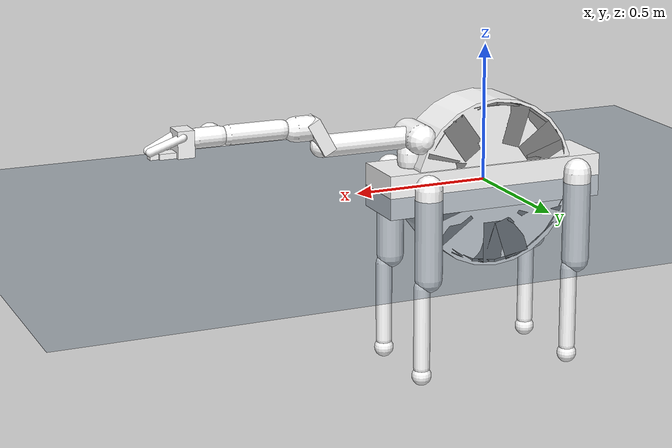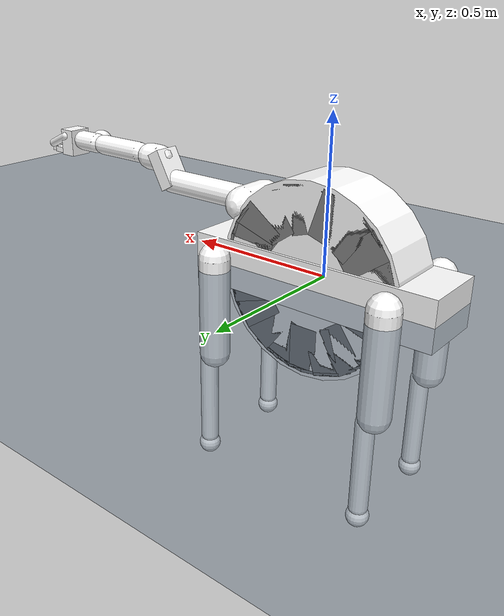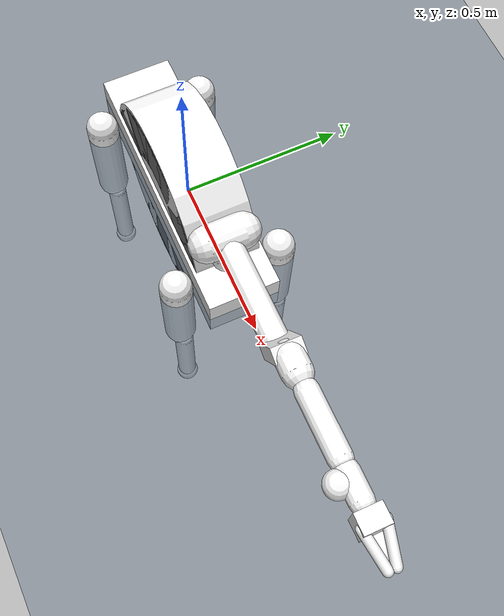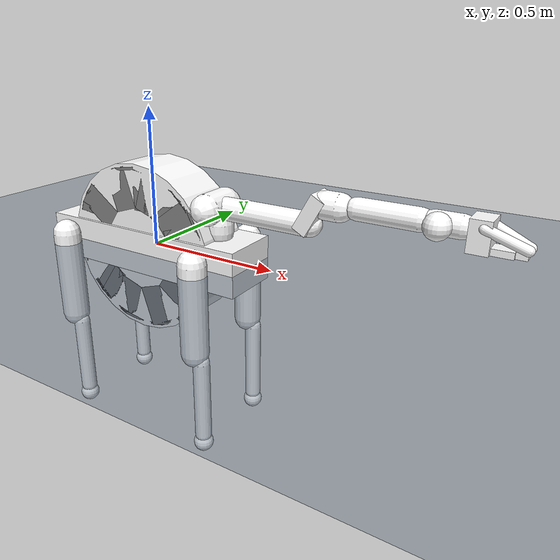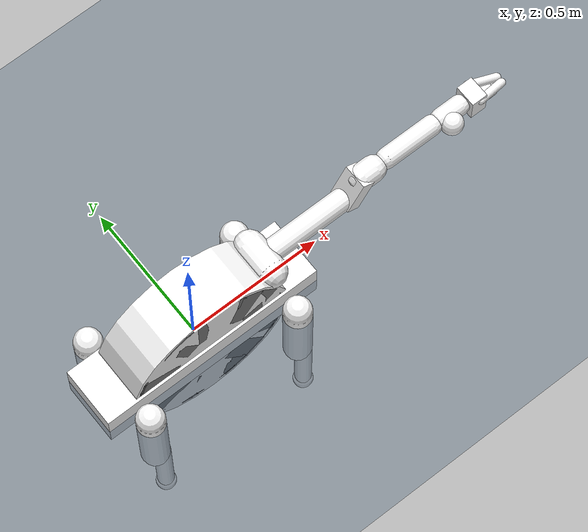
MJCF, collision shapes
<mujoco model="spot_tire_scene">
<!-- Copyright (c) 2023 Boston Dynamics AI Institute LLC. All rights reserved. -->
  <include file="../../components/spot/compiler.xml" />
  <include file="../../components/spot/defs.xml" />
  <include file="../../components/common/ground_defs.xml" />

  <!-- NOTE: include order impacts actuators and sensors order! -->
  <include file="../../components/spot/base_defs.xml" />
  <include file="../../components/spot/legs_defs.xml" />
  <include file="../../components/spot/arm_defs.xml" />

  <worldbody>
    <include file="../../components/common/ground.xml" />

    <body name="body">
      <include file="../../components/spot/base.xml" />
      <include file="../../components/spot/legs.xml" />
      <include file="../../components/spot/arm.xml" />
    </body>

    <include file="../../components/objects/cartire.xml" />

  </worldbody>

  <include file="../../components/spot/sensors.xml" />
  <include file="../../components/spot/contact.xml" />
</mujoco>

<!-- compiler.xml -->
<mujoco>
  <compiler angle="radian" assetdir="../../../meshes/spot/" autolimits="true"/>

  <option timestep="0.01" solver="Newton" integrator="implicitfast" density="1">
    <!-- iterations="5" ls_iterations="10" -->
  </option>

</mujoco>

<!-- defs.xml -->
<mujoco>
  <asset>
    <material name="black" rgba="0.2 0.2 0.2 1"/>
    <material name="yellow" rgba="1 0.8 0.03 1"/>
    <texture name="bdai_texture" type="2d" file="bdaii_spot_wrap.png"/>
    <material name="bdai" texture="bdai_texture" specular="1" shininess="11"/>
  </asset>

  <default>
    <default class="visual">
      <geom type="mesh" contype="0" conaffinity="0" group="2"/>
    </default>
    <default class="collision">
      <geom group="3" friction="0.15" priority="4" rgba="1 1 1 1">
      </geom>
    </default>
  </default>
</mujoco>

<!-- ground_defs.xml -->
<mujoco>
  <asset>
    <texture name="blue_grid" type="2d" builtin="checker" rgb1="0.2 0.3 0.4" rgb2="0.1 0.2 0.3" width="300" height="300" mark="edge" markrgb="0.8 0.8 0.8"/>
    <material name="blue_grid" texture="blue_grid" texrepeat="5 5" texuniform="true" reflectance=".2"/>
  </asset>
</mujoco>

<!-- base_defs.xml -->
<mujoco>
  <asset>
    <mesh name="body" file="base/collision/body_collision.obj"/>
    <mesh name="body_0_visual" file="base/visual/body_0.obj"/>
    <mesh name="body_1_visual" file="base/visual/body_1.obj"/>
  </asset>

  <default>
    <default class="base">
      <joint damping="30" range="-3 3"/>
      <position kp="300" ctrlrange="-3 3" forcerange="-1000 1000"/>
    </default>
  </default>
</mujoco>

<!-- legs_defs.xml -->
<mujoco>
  <asset>
    <mesh name="left_upper_leg_collision" file="base/collision/left_upper_leg_collision.obj"/>
    <mesh name="left_lower_leg_collision" file="base/collision/left_lower_leg_collision.obj"/>
    <mesh name="right_upper_leg_collision" file="base/collision/right_upper_leg_collision.obj"/>
    <mesh name="right_lower_leg_collision" file="base/collision/right_lower_leg_collision.obj"/>

    <mesh name="front_left_hip_visual" file="base/visual/front_left_hip.obj"/>
    <mesh name="front_left_lower_leg_visual" file="base/visual/front_left_lower_leg.obj"/>
    <mesh name="front_left_upper_leg_0_visual" file="base/visual/front_left_upper_leg_0.obj"/>
    <mesh name="front_left_upper_leg_1_visual" file="base/visual/front_left_upper_leg_1.obj"/>

    <mesh name="front_right_hip_visual" file="base/visual/front_right_hip.obj"/>
    <mesh name="front_right_lower_leg_visual" file="base/visual/front_right_lower_leg.obj"/>
    <mesh name="front_right_upper_leg_0_visual" file="base/visual/front_right_upper_leg_0.obj"/>
    <mesh name="front_right_upper_leg_1_visual" file="base/visual/front_right_upper_leg_1.obj"/>

    <mesh name="rear_left_hip_visual" file="base/visual/rear_left_hip.obj"/>
    <mesh name="rear_left_lower_leg_visual" file="base/visual/rear_left_lower_leg.obj"/>
    <mesh name="rear_left_upper_leg_0_visual" file="base/visual/rear_left_upper_leg_0.obj"/>
    <mesh name="rear_left_upper_leg_1_visual" file="base/visual/rear_left_upper_leg_1.obj"/>

    <mesh name="rear_right_hip_visual" file="base/visual/rear_right_hip.obj"/>
    <mesh name="rear_right_lower_leg_visual" file="base/visual/rear_right_lower_leg.obj"/>
    <mesh name="rear_right_upper_leg_0_visual" file="base/visual/rear_right_upper_leg_0.obj"/>
    <mesh name="rear_right_upper_leg_1_visual" file="base/visual/rear_right_upper_leg_1.obj"/>
  </asset>

  <default>
    <!-- TODO find correct value for actuators -->
    <default class="leg">
      <default class="hip_x">
        <joint range="-0.785398 0.785398"/>
      </default>
      <default class="hip_y">
        <joint range="-0.898845 2.29511"/>
      </default>
      <default class="knee">
        <joint range="-2.7929 -0.254801"/>
      </default>
    </default>
  </default>

  <actuator>
    <position name="act_fl1" joint="joint_front_left_hip_x" kp="60" kv="1.5" ctrlrange="-0.785398 0.785398" forcerange="-45 45"/>
    <position name="act_fl2" joint="joint_front_left_hip_y" kp="60" kv="1.5" ctrlrange="-0.898845 2.29511" forcerange="-45 45"/>
    <position name="act_fl3" joint="joint_front_left_knee" kp="60" kv="1.5" ctrlrange="-2.7929 -0.254801" forcerange="-115 115"/>
    <position name="act_fr1" joint="joint_front_right_hip_x" kp="60" kv="1.5" ctrlrange="-0.785398 0.785398" forcerange="-45 45"/>
    <position name="act_fr2" joint="joint_front_right_hip_y" kp="60" kv="1.5" ctrlrange="-0.898845 2.29511" forcerange="-45 45"/>
    <position name="act_fr3" joint="joint_front_right_knee" kp="60" kv="1.5" ctrlrange="-2.7929 -0.254801" forcerange="-115 115"/>
    <position name="act_rl1" joint="joint_rear_left_hip_x" kp="60" kv="1.5" ctrlrange="-0.785398 0.785398" forcerange="-45 45"/>
    <position name="act_rl2" joint="joint_rear_left_hip_y" kp="60" kv="1.5" ctrlrange="-0.898845 2.29511" forcerange="-45 45"/>
    <position name="act_rl3" joint="joint_rear_left_knee" kp="60" kv="1.5" ctrlrange="-2.7929 -0.254801" forcerange="-115 115"/>
    <position name="act_rr1" joint="joint_rear_right_hip_x" kp="60" kv="1.5" ctrlrange="-0.785398 0.785398" forcerange="-45 45"/>
    <position name="act_rr2" joint="joint_rear_right_hip_y" kp="60" kv="1.5" ctrlrange="-0.898845 2.29511" forcerange="-45 45"/>
    <position name="act_rr3" joint="joint_rear_right_knee" kp="60" kv="1.5" ctrlrange="-2.7929 -0.254801" forcerange="-115 115"/>
  </actuator>
</mujoco>

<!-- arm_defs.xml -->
<mujoco>
  <asset>
    <mesh name="arm_link_sh0_base" file="arm/collision/arm_link_sh0_base.obj"/>
    <mesh name="arm_link_sh0_left_motor" file="arm/collision/arm_link_sh0_left_motor.obj"/>
    <mesh name="arm_link_sh0_right_motor" file="arm/collision/arm_link_sh0_right_motor.obj"/>
    <mesh name="arm_link_sh1" file="arm/collision/arm_link_sh1.obj"/>
    <mesh name="arm_link_el0" file="arm/collision/arm_link_el0.obj"/>
    <mesh name="arm_link_el1" file="arm/collision/arm_link_el1_main.obj"/>
    <mesh name="arm_link_el1_main" file="arm/collision/arm_link_el1_main.obj"/>
    <mesh name="arm_link_el1_lip" file="arm/collision/arm_link_el1_lip.obj"/>
    <mesh name="arm_link_wr0" file="arm/collision/arm_link_wr0.obj"/>
    <mesh name="arm_link_wr1" file="arm/collision/arm_link_wr1.obj"/>

    <mesh name="left_hinge" file="gripper/collision/left_hinge.obj"/>
    <mesh name="left_finger" file="gripper/collision/left_finger.obj"/>
    <mesh name="left_tooth" file="gripper/collision/left_tooth.obj"/>
    <mesh name="right_hinge" file="gripper/collision/right_hinge.obj"/>
    <mesh name="right_finger" file="gripper/collision/right_finger.obj"/>
    <mesh name="right_tooth" file="gripper/collision/right_tooth.obj"/>
    <mesh name="front_jaw" file="gripper/collision/front_jaw.obj"/>
    <mesh name="middle_jaw" file="gripper/collision/middle_jaw.obj"/>
    <mesh name="jaw_tooth" file="gripper/collision/jaw_tooth.obj"/>

    <mesh name="arm_link_sh0_visual" file="arm/visual/arm_link_sh0.obj"/>
    <mesh name="arm_link_sh1_0_visual" file="arm/visual/arm_link_sh1_0.obj"/>
    <mesh name="arm_link_sh1_1_visual" file="arm/visual/arm_link_sh1_1.obj"/>
    <mesh name="arm_link_el0_visual" file="arm/visual/arm_link_el0.obj"/>
    <mesh name="arm_link_el1_0_visual" file="arm/visual/arm_link_el1_0.obj"/>
    <mesh name="arm_link_el1_1_visual" file="arm/visual/arm_link_el1_1.obj"/>
    <mesh name="arm_link_wr0_0_visual" file="arm/visual/arm_link_wr0_0.obj"/>
    <mesh name="arm_link_wr0_1_visual" file="arm/visual/arm_link_wr0_1.obj"/>
    <mesh name="arm_link_wr1_0_visual" file="arm/visual/arm_link_wr1_0.obj"/>
    <mesh name="arm_link_wr1_1_visual" file="arm/visual/arm_link_wr1_1.obj"/>
    <mesh name="arm_link_fngr_0_visual" file="gripper/visual/arm_link_fngr_0.obj"/>
    <mesh name="arm_link_fngr_1_visual" file="gripper/visual/arm_link_fngr_1.obj"/>
  </asset>

  <default>
    <!-- The arm damping is higher than the damping gains in spot-sim, because actual joint damping is unknown -->
    <default class="arm">
      <default class="arm_sh0">
        <joint damping="51.0" range="-2.61799387799149441136 3.14159265358979311599"/>
      </default>
      <default class="arm_sh1">
        <joint damping="76.5" range="-3.14159265358979311599 0.52359877559829881565"/>
      </default>
      <default class="arm_el0">
        <joint damping="51.0" range="0 3.14159265358979311599"/>
      </default>
      <default class="arm_el1">
        <joint damping="10.2" range="-2.79252680319092716487 2.79252680319092716487"/>
      </default>
      <default class="arm_wr0">
        <joint damping="10.2" range="-1.83259571459404613236 1.83259571459404613236"/>
      </default>
      <default class="arm_wr1">
        <joint damping="10.2" range="-2.87979326579064354163 2.87979326579064354163"/>
      </default>
      <default class="arm_f1x">
        <joint damping="1.6" range="-1.57 0"/>
      </default>
    </default>
  </default>

  <actuator>
    <position name="act_3" joint="arm_sh0" kp="1020.0" ctrlrange="-2.61799387799149441136 3.14159265358979311599" forcerange="-90.9 90.0"/>
    <position name="act_4" joint="arm_sh1" kp="255" ctrlrange="-3.14159265358979311599 0.52359877559829881565" forcerange="-181.8 181.8"/>
    <position name="act_5" joint="arm_el0" kp="204.0" ctrlrange="0 3.14159265358979311599" forcerange="-90.9 90.0"/>
    <position name="act_6" joint="arm_el1" kp="102.0" ctrlrange="-2.79252680319092716487 2.79252680319092716487" forcerange="-30.3 30.3"/>
    <position name="act_7" joint="arm_wr0" kp="102.0" ctrlrange="-1.83259571459404613236 1.83259571459404613236" forcerange="-30.9 30.0"/>
    <position name="act_8" joint="arm_wr1" kp="102.0" ctrlrange="-2.87979326579064354163 2.87979326579064354163" forcerange="-30.9 30.0"/>
    <position name="act_9" joint="arm_f1x" kp="16.0" ctrlrange="-1.57 0" forcerange="-15.32 15.32"/>
  </actuator>

</mujoco>

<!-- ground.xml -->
<mujoco>
  <body name="ground">
    <geom name="ground" type="plane" size="2 2 0.01" friction="0.8" priority="5" material="blue_grid"/>
  </body>
</mujoco>

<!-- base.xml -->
<mujoco model="spot_base">
<!-- Copyright (c) 2024 Boston Dynamics AI Institute LLC. All rights reserved. -->
  <joint name="base" type="free"/>
  <inertial mass="16.70765207" pos="0 0 -0.00496172" fullinertia="0.081543792 0.549231154 0.569454373 0 0 0"/>
  <geom name="body_0_visual" class="visual" mesh="body_0_visual" material="black"/>
  <geom name="body_1_visual" class="visual" mesh="body_1_visual" material="yellow"/>
  <geom name="body" class="collision" type="box" size="0.42 0.11 0.08"/>
  <site name="site_body" pos="0 0 0.3" size="0.01"/>
</mujoco>

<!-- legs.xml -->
<mujoco model="spot_legs">
<!-- Copyright (c) 2023 Boston Dynamics AI Institute LLC. All rights reserved. -->
    <body name="legs">
        <body name="front_left_hip" pos="0.29785 0.055 0">
            <inertial pos="-0.01586739 0.00855842 0.00000903" mass="1.13688339" fullinertia="0.00122166 0.00158957 0.00172903 -0.00017754 0.00000043 -0.00000049"/>
            <joint name="joint_front_left_hip_x" class="hip_x" pos="0 0 0" axis="1 0 0" range="-0.785398 0.785398"/>
            <geom name="front_left_hip_visual" class="visual" mesh="front_left_hip_visual" material="black"/>
            <body name="front_left_upper_leg" pos="0 0.110945 0">
                <inertial pos="0.00214442 -0.01110184 -0.07881204" mass="2.25620359" fullinertia="0.02692501 0.02583907 0.00318737 -0.00008782 0.00054873 0.00207146"/>
                <joint name="joint_front_left_hip_y" class="hip_y" pos="0 0 0" axis="0 1 0" range="-0.898845 2.295108"/>
                <geom name="front_left_upper_leg_0_visual" class="visual" mesh="front_left_upper_leg_0_visual" material="yellow"/>
                <geom name="front_left_upper_leg_1_visual" class="visual" mesh="front_left_upper_leg_1_visual" material="black"/>
                <geom name="front_left_upper_leg_main" class="collision" type="capsule" size="0.05 0.165" pos="0 0 -0.13"/>
                <body name="front_left_lower_leg" pos="0.025 0 -0.3205">
                    <inertial pos="0.00597360 0.0 -0.17466427" mass="0.33" fullinertia="0.00701356 0.00709946 0.00014529 0 0.00006600 0"/>
                    <joint name="joint_front_left_knee" class="knee" pos="0 0 0" axis="0 1 0" range="-2.7929 -0.2471"/>
                    <geom name="front_left_lower_leg_visual" class="visual" mesh="front_left_lower_leg_visual" material="black"/>
                    <geom name="front_left_lower_leg_main" class="collision" type="capsule" size="0.03 0.15" pos="0 0 -0.155"/>
                    <geom name="front_left_foot" class="collision" type="sphere" size="0.036" pos="0 0 -0.3365"/>
                    <site name="site_front_left" pos="0 0 -0.3365" size="0.01"/>
                </body>
            </body>
        </body>

        <body name="front_right_hip" pos="0.29785 -0.055 0">
            <inertial pos="-0.01586739 -0.00855842 0.00000903" mass="1.13688339" fullinertia="0.00122166 0.00158957 0.00172903 0.00017754 0.00000043 0.00000049"/>
            <joint name="joint_front_right_hip_x" class="hip_x" pos="0 0 0" axis="1 0 0" range="-0.785398 0.785398"/>
            <geom name="front_right_hip_visual" class="visual" mesh="front_right_hip_visual" material="black"/>
            <body name="front_right_upper_leg" pos="0 -0.110945 0">
                <inertial pos="0.00214442 0.01110184 -0.07881204" mass="2.25620359" fullinertia="0.02692501 0.02583907 0.00318737 0.00008782 0.00054873 -0.00207146"/>
                <joint name="joint_front_right_hip_y" class="hip_y" pos="0 0 0" axis="0 1 0" range="-0.898845 2.295108"/>
                <geom name="front_right_upper_leg_0_visual" class="visual" mesh="front_right_upper_leg_0_visual" material="yellow"/>
                <geom name="front_right_upper_leg_1_visual" class="visual" mesh="front_right_upper_leg_1_visual" material="black"/>
                <geom name="front_right_upper_leg_main" class="collision" type="capsule" size="0.05 0.165" pos="0 0 -0.13"/>
                <body name="front_right_lower_leg" pos="0.025 0 -0.3205">
                    <inertial pos="0.00597360 0.0 -0.17466427" mass="0.33" fullinertia="0.00701356 0.00709946 0.00014529 0 0.00006600 0"/>
                    <joint name="joint_front_right_knee" class="knee" pos="0 0 0" axis="0 1 0" range="-2.7929 -0.2471"/>
                    <geom name="front_right_lower_leg_visual" class="visual" mesh="front_right_lower_leg_visual" material="black"/>
                    <geom name="front_right_lower_leg_main" class="collision" type="capsule" size="0.03 0.15" pos="0 0 -0.155"/>
                    <geom name="front_right_foot" class="collision" type="sphere" size="0.036" pos="0 0 -0.3365"/>
                    <site name="site_front_right" pos="0 0 -0.3365" size="0.01"/>
                </body>
            </body>
        </body>

        <body name="rear_left_hip" pos="-0.29785 0.055 0">
            <inertial pos="0.01586739 0.00855842 0.00000903" mass="1.13688339" fullinertia="0.00122166 0.00158957 0.00172903 0.00017754 -0.00000043 -0.00000049"/>
            <joint name="joint_rear_left_hip_x" class="hip_x" pos="0 0 0" axis="1 0 0" range="-0.785398 0.785398"/>
            <geom name="rear_left_hip_visual" class="visual" mesh="rear_left_hip_visual" material="black"/>
            <body name="rear_left_upper_leg" pos="0 0.110945 0">
                <inertial pos="0.00214442 -0.01110184 -0.07881204" mass="2.25620359" fullinertia="0.02692501 0.02583907 0.00318737 -0.00008782 0.00054873 0.00207146"/>
                <joint name="joint_rear_left_hip_y" class="hip_y" pos="0 0 0" axis="0 1 0" range="-0.898845 2.295108"/>
                <geom name="rear_left_upper_leg_0_visual" class="visual" mesh="rear_left_upper_leg_0_visual" material="yellow"/>
                <geom name="rear_left_upper_leg_1_visual" class="visual" mesh="rear_left_upper_leg_1_visual" material="black"/>
                <geom name="rear_left_upper_leg_main" class="collision" type="capsule" size="0.05 0.165" pos="0 0 -0.13"/>
                <body name="rear_left_lower_leg" pos="0.025 0 -0.3205">
                    <inertial pos="0.00597360 0.0 -0.17466427" mass="0.33" fullinertia="0.00701356 0.00709946 0.00014529 0 0.00006600 0"/>
                    <joint name="joint_rear_left_knee" class="knee" pos="0 0 0" axis="0 1 0" range="-2.7929 -0.2471"/>
                    <geom name="rear_left_lower_leg_visual" class="visual" mesh="rear_left_lower_leg_visual" material="black"/>
                    <geom name="rear_left_lower_leg_main" class="collision" type="capsule" size="0.03 0.15" pos="0 0 -0.155"/>
                    <geom name="rear_left_foot" class="collision" type="sphere" size="0.036" pos="0 0 -0.3365"/>
                    <site name="site_rear_left" pos="0 0 -0.3365" size="0.01"/>
                </body>
            </body>
        </body>

        <body name="rear_right_hip" pos="-0.29785 -0.055 0">
            <inertial pos="0.01586739 -0.00855842 0.00000903" mass="1.13688339" fullinertia="0.00122166 0.00158957 0.00172903 -0.00017754 -0.00000043 0.00000049"/>
            <joint name="joint_rear_right_hip_x" class="hip_x" pos="0 0 0" axis="1 0 0" range="-0.785398 0.785398"/>
            <geom name="rear_right_hip_visual" class="visual" mesh="rear_right_hip_visual" material="black"/>
            <body name="rear_right_upper_leg" pos="0 -0.110945 0">
                <inertial pos="0.00214442 0.01110184 -0.07881204" mass="2.25620359" fullinertia="0.02692501 0.02583907 0.00318737 0.00008782 0.00054873 -0.00207146"/>
                <joint name="joint_rear_right_hip_y" class="hip_y" pos="0 0 0" axis="0 1 0" range="-0.898845 2.295108"/>
                <geom name="rear_right_upper_leg_0_visual" class="visual" mesh="rear_right_upper_leg_0_visual" material="yellow"/>
                <geom name="rear_right_upper_leg_1_visual" class="visual" mesh="rear_right_upper_leg_1_visual" material="black"/>
                <geom name="rear_right_upper_leg_main" class="collision" type="capsule" size="0.05 0.165" pos="0 0 -0.13"/>
                <body name="rear_right_lower_leg" pos="0.025 0 -0.3205">
                    <inertial pos="0.00597360 0.0 -0.17466427" mass="0.33" fullinertia="0.00701356 0.00709946 0.00014529 0 0.00006600 0"/>
                    <joint name="joint_rear_right_knee" class="knee" pos="0 0 0" axis="0 1 0" range="-2.7929 -0.2471"/>
                    <geom name="rear_right_lower_leg_visual" class="visual" mesh="rear_right_lower_leg_visual" material="black"/>
                    <geom name="rear_right_lower_leg_main" class="collision" type="capsule" size="0.03 0.15" pos="0 0 -0.155"/>
                    <geom name="rear_right_foot" class="collision" type="sphere" size="0.036" pos="0 0 -0.3365"/>
                    <site name="site_rear_right" pos="0 0 -0.3365" size="0.01"/>
                </body>
            </body>
        </body>
    </body>
</mujoco>

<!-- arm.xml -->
<mujoco model="spot_arm">
<!-- Copyright (c) 2023 Boston Dynamics AI Institute LLC. All rights reserved. -->
<!-- fullinertia="M(1,1), M(2,2), M(3,3), M(1,2), M(1,3), M(2,3)" -->
  <body name="arm">
    <body name="arm_link_sh0" pos="0.292 0 0.188" gravcomp="1">
      <joint name="arm_sh0" class="arm_sh0" type="hinge" axis="0 0 1" pos="0 0 0"/>
      <inertial mass="1.904699" fullinertia="0.008896 0.004922 0.0073030 0.000005 -0.000193 0.000033" pos="-0.008399 0.000272 -0.024603"/>
      <geom name="arm_link_sh0_visual" class="visual" mesh="arm_link_sh0_visual" material="black"/>
      <geom name="arm_link_sh0_base" class="collision" type="capsule" size="0.05 0.015" pos="0 0 -0.07"/>
      <geom name="arm_link_sh0_motor" class="collision" type="capsule" size="0.055 0.055" pos="-0.015 0 0" euler="1.57079632679 0 0"/>
      <site name="site_arm_link_sh0" pos="0 0 0" size="0.01"/>

      <body name="arm_link_sh1" pos="0 0 0" gravcomp="1">
        <joint name="arm_sh1" class="arm_sh1" type="hinge" axis="0 1 0" pos="0 0 0"/>
        <inertial mass="1.85701942" fullinertia="0.00261526 0.02703868 0.02819929 -0.00040406 0.00010019 0.00000547" pos="0.08084909 -0.00167243 0.00045644" />
        <geom name="arm_link_sh1_0_visual" class="visual" mesh="arm_link_sh1_0_visual" material="yellow"/>
        <geom name="arm_link_sh1_1_visual" class="visual" mesh="arm_link_sh1_1_visual" material="black"/>
        <geom name="arm_link_sh1" class="collision" type="capsule" size="0.04 0.175" pos="0.17 0 0" euler="0 1.57079632679 0"/>
        <site name="site_arm_link_sh1" pos="0 0 0" size="0.01"/>

        <body name="arm_link_el0" pos="0.3385 0 0" gravcomp="1">
          <joint name="arm_el0" class="arm_el0" type="hinge" axis="0 1 0" pos="0 0 0"/>
          <inertial mass="0.94831958" fullinertia="0.00175909 0.00269233 0.00202854 0.00006087  0.00092380 0.00005217" pos="0.04476621 -0.00271130 0.04991363" />
          <geom name="arm_link_el0_visual" class="visual" mesh="arm_link_el0_visual" material="black"/>
          <geom name="arm_link_el0_joint" class="collision" type="box" size="0.025 0.045 0.065" pos="0.02 0 0.04" euler= "0 0.5 0"/>
          <geom name="arm_link_el0_body" class="collision" type="capsule" size="0.045 0.025" pos="0.08 0 0.07" euler="0 1.57079632679 0"/>
          <site name="site_arm_link_el0" pos="0 0 0" size="0.01"/>

          <body name="arm_link_el1" pos="0.4033 0 0.075" gravcomp="1">
            <joint name="arm_el1" class="arm_el1" type="hinge" axis="1 0 0" pos="0 0 0"/>
            <inertial mass="1.01754820" fullinertia="0.00117710 0.01649389 0.01689901 -0.00260549 0.00000156 -0.00000287" pos="-0.16867073 -0.01616121 0.00001149" />
            <geom name="arm_link_el1_0_visual" class="visual" mesh="arm_link_el1_0_visual" material="yellow"/>
            <geom name="arm_link_el1_1_visual" class="visual" mesh="arm_link_el1_1_visual" material="black"/>
            <geom name="arm_link_el1" type="capsule" class="collision" size="0.035 0.095" pos="-0.15 0 0" euler="0 1.57079632679 0"/>
            <geom name="arm_link_el1_knob" type="sphere" class="collision" size="0.04" pos="0 -0.035 0"/>
            <site name="site_arm_link_el1" pos="0 0 0" size="0.01"/>

            <body name="arm_link_wr0" pos="0 0 0" gravcomp="1">
              <joint name="arm_wr0" class="arm_wr0" type="hinge" axis="0 1 0" pos="0 0 0"/>
              <inertial mass="0.58263740" fullinertia="0.00046738 0.00044968 0.00053616 0.00006957 0.00000040 0.00000016" pos="0.00952465 -0.01144406 0.00000186" />
              <geom name="arm_link_wr0_0_visual" class="visual" mesh="arm_link_wr0_0_visual" material="yellow"/>
              <geom name="arm_link_wr0_1_visual" class="visual" mesh="arm_link_wr0_1_visual" material="black"/>
              <geom name="arm_link_wr0" class="collision" type="capsule" size="0.035 0.04" pos="0.02 0 0" euler="0 1.57079632679 0"/>
              <site name="site_arm_link_wr0" pos="0 0 0" size="0.01"/>

              <body name="arm_link_wr1" pos="0 0 0" gravcomp="1">
                <joint name="arm_wr1" class="arm_wr1" type="hinge" axis="1 0 0" pos="0 0 0"/>
                <inertial mass="0.93335298" fullinertia="0.00098836 0.00197018 0.00165791 -0.00000126 -0.00036919 -0.00000074" pos="0.09751283 0.00009265 -0.01120523" />
                <geom name="arm_link_wr1_0_visual" class="visual" mesh="arm_link_wr1_0_visual" material="yellow"/>
                <geom name="arm_link_wr1_1_visual" class="visual" mesh="arm_link_wr1_1_visual" material="black"/>
                <geom name="arm_link_wr1" class="collision" type="box" size="0.03 0.04 0.0475" pos="0.11 0 -0.01" />
                <geom name="bottom_jaw" class="collision" type="box" size="0.03 0.025 0.01" pos="0.17 0 -0.0475" />
                <geom name="front_jaw" class="collision" type="box" size="0.016 0.015 0.01" pos="0.215 0 -0.0475" />
                <geom name="front_jaw_tooth" class="collision" type="box" size="0.005 0.01 0.005" pos="0.224 0 -0.039" euler="0 1 0"/>
                <site name="site_arm_link_wr1" pos="0 0 0" size="0.01"/>

                <body name="arm_link_fngr" pos="0.11745 0.0 0.014820" gravcomp="1">
                  <joint name="arm_f1x" class="arm_f1x" type="hinge" axis="0 1 0" pos="0 0 0"/>
                  <inertial mass="0.22383315" fullinertia="0.00025226 0.00048453 0.00059145 -0.00000536 -0.00015067 0.00000184" pos="0.03565178 0.00067200 -0.01227516" />
                  <geom name="arm_link_fngr_0_visual" class="visual" mesh="arm_link_fngr_0_visual" material="yellow"/>
                  <geom name="arm_link_fngr_1_visual" class="visual" mesh="arm_link_fngr_1_visual" material="black"/>
                  <geom name="left_jaw" type="capsule" class="collision" size="0.015 0.06" pos="0.057 0.023 -0.023" euler="-0.45 2.0 0"/>
                  <geom name="right_jaw" type="capsule" class="collision" size="0.015 0.06" pos="0.057 -0.023 -0.023" euler="0.45 2.0 0"/>
                  <site name="site_arm_link_fngr" pos="0 0 0" size="0.01"/>
                </body>
              </body>
            </body>
          </body>
        </body>
      </body>
    </body>
  </body>
</mujoco>

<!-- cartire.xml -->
<mujoco model="cartire">
  <body name="cartire" pos="0 0 0">
    <joint name="cartire_joint" type="free"/>
    <inertial pos="0 0 0" mass="6.0" diaginertia="0.5 0.5 0.5"/>
    <geom name="tire_outer_0_visual" type="box" size="0.005 0.1 0.046930339512069257" pos="0.29 0 0.01" quat="1.0 0.0 -0.0 0.0" class="visual"/>
    <geom name="tire_outer_0" type="box" size="0.005 0.1 0.046930339512069257" pos="0.29 0 0.01" quat="1.0 0.0 -0.0 0.0" class="collision"/>
    <geom name="tire_outer_seam_0_visual" type="box" size="0.005 0.1 0.046930339512069257" pos="0.28642961877258993 0 0.05536599486166695" quat="0.996917333733128 0.0 -0.07845909572784494 0.0" class="visual"/>
    <geom name="tire_outer_seam_0" type="box" size="0.005 0.1 0.046930339512069257" pos="0.28642961877258993 0 0.05536599486166695" quat="0.996917333733128 0.0 -0.07845909572784494 0.0" class="collision"/>
    <geom name="inner_rim_0_visual" type="box" size="0.075 0.005 0.046930339512069257" pos="0.21999999999999997 0.095 0.01" quat="1.0 0.0 -0.0 0.0" class="visual"/>
    <geom name="inner_rim_0" type="box" size="0.075 0.005 0.046930339512069257" pos="0.21999999999999997 0.095 0.01" quat="1.0 0.0 -0.0 0.0" class="collision"/>
    <geom name="outer_rim_0_visual" type="box" size="0.075 0.005 0.046930339512069257" pos="0.21999999999999997 -0.095 0.01" quat="1.0 0.0 -0.0 0.0" class="visual"/>
    <geom name="outer_rim_0" type="box" size="0.075 0.005 0.046930339512069257" pos="0.21999999999999997 -0.095 0.01" quat="1.0 0.0 -0.0 0.0" class="collision"/>
    <geom name="tire_outer_1_visual" type="box" size="0.005 0.1 0.046930339512069257" pos="0.2758063897255945 0 0.09961492836873473" quat="0.9876883405951378 0.0 -0.15643446504023087 0.0" class="visual"/>
    <geom name="tire_outer_1" type="box" size="0.005 0.1 0.046930339512069257" pos="0.2758063897255945 0 0.09961492836873473" quat="0.9876883405951378 0.0 -0.15643446504023087 0.0" class="collision"/>
    <geom name="tire_outer_seam_1_visual" type="box" size="0.005 0.1 0.046930339512069257" pos="0.25839189201462665 0 0.14165724492446854" quat="0.9723699203976766 0.0 -0.2334453638559054 0.0" class="visual"/>
    <geom name="tire_outer_seam_1" type="box" size="0.005 0.1 0.046930339512069257" pos="0.25839189201462665 0 0.14165724492446854" quat="0.9723699203976766 0.0 -0.2334453638559054 0.0" class="collision"/>
    <geom name="inner_rim_1_visual" type="box" size="0.075 0.005 0.046930339512069257" pos="0.20923243358493376 0.095 0.07798373876248842" quat="0.9876883405951378 0.0 -0.15643446504023087 0.0" class="visual"/>
    <geom name="inner_rim_1" type="box" size="0.075 0.005 0.046930339512069257" pos="0.20923243358493376 0.095 0.07798373876248842" quat="0.9876883405951378 0.0 -0.15643446504023087 0.0" class="collision"/>
    <geom name="outer_rim_1_visual" type="box" size="0.075 0.005 0.046930339512069257" pos="0.20923243358493376 -0.095 0.07798373876248842" quat="0.9876883405951378 0.0 -0.15643446504023087 0.0" class="visual"/>
    <geom name="outer_rim_1" type="box" size="0.075 0.005 0.046930339512069257" pos="0.20923243358493376 -0.095 0.07798373876248842" quat="0.9876883405951378 0.0 -0.15643446504023087 0.0" class="collision"/>
    <geom name="tire_outer_2_visual" type="box" size="0.005 0.1 0.046930339512069257" pos="0.23461492836873474 0 0.1804577231648172" quat="0.9510565162951535 0.0 -0.3090169943749474 0.0" class="visual"/>
    <geom name="tire_outer_2" type="box" size="0.005 0.1 0.046930339512069257" pos="0.23461492836873474 0 0.1804577231648172" quat="0.9510565162951535 0.0 -0.3090169943749474 0.0" class="collision"/>
    <geom name="tire_outer_seam_2_visual" type="box" size="0.005 0.1 0.046930339512069257" pos="0.20506096654409878 0 0.21506096654409876" quat="0.9238795325112867 0.0 -0.3826834323650898 0.0" class="visual"/>
    <geom name="tire_outer_seam_2" type="box" size="0.005 0.1 0.046930339512069257" pos="0.20506096654409878 0 0.21506096654409876" quat="0.9238795325112867 0.0 -0.3826834323650898 0.0" class="collision"/>
    <geom name="inner_rim_2_visual" type="box" size="0.075 0.005 0.046930339512069257" pos="0.1779837387624884 0.095 0.13931275550434408" quat="0.9510565162951535 0.0 -0.3090169943749474 0.0" class="visual"/>
    <geom name="inner_rim_2" type="box" size="0.075 0.005 0.046930339512069257" pos="0.1779837387624884 0.095 0.13931275550434408" quat="0.9510565162951535 0.0 -0.3090169943749474 0.0" class="collision"/>
    <geom name="outer_rim_2_visual" type="box" size="0.075 0.005 0.046930339512069257" pos="0.1779837387624884 -0.095 0.13931275550434408" quat="0.9510565162951535 0.0 -0.3090169943749474 0.0" class="visual"/>
    <geom name="outer_rim_2" type="box" size="0.075 0.005 0.046930339512069257" pos="0.1779837387624884 -0.095 0.13931275550434408" quat="0.9510565162951535 0.0 -0.3090169943749474 0.0" class="collision"/>
    <geom name="tire_outer_3_visual" type="box" size="0.005 0.1 0.046930339512069257" pos="0.1704577231648172 0 0.24461492836873475" quat="0.8910065241883679 0.0 -0.45399049973954675 0.0" class="visual"/>
    <geom name="tire_outer_3" type="box" size="0.005 0.1 0.046930339512069257" pos="0.1704577231648172 0 0.24461492836873475" quat="0.8910065241883679 0.0 -0.45399049973954675 0.0" class="collision"/>
    <geom name="tire_outer_seam_3_visual" type="box" size="0.005 0.1 0.046930339512069257" pos="0.13165724492446856 0 0.26839189201462665" quat="0.8526401643540922 0.0 -0.5224985647159488 0.0" class="visual"/>
    <geom name="tire_outer_seam_3" type="box" size="0.005 0.1 0.046930339512069257" pos="0.13165724492446856 0 0.26839189201462665" quat="0.8526401643540922 0.0 -0.5224985647159488 0.0" class="collision"/>
    <geom name="inner_rim_3_visual" type="box" size="0.075 0.005 0.046930339512069257" pos="0.12931275550434407 0.095 0.18798373876248842" quat="0.8910065241883679 0.0 -0.45399049973954675 0.0" class="visual"/>
    <geom name="inner_rim_3" type="box" size="0.075 0.005 0.046930339512069257" pos="0.12931275550434407 0.095 0.18798373876248842" quat="0.8910065241883679 0.0 -0.45399049973954675 0.0" class="collision"/>
    <geom name="outer_rim_3_visual" type="box" size="0.075 0.005 0.046930339512069257" pos="0.12931275550434407 -0.095 0.18798373876248842" quat="0.8910065241883679 0.0 -0.45399049973954675 0.0" class="visual"/>
    <geom name="outer_rim_3" type="box" size="0.075 0.005 0.046930339512069257" pos="0.12931275550434407 -0.095 0.18798373876248842" quat="0.8910065241883679 0.0 -0.45399049973954675 0.0" class="collision"/>
    <geom name="tire_outer_4_visual" type="box" size="0.005 0.1 0.046930339512069257" pos="0.08961492836873476 0 0.2858063897255945" quat="0.8090169943749475 0.0 -0.5877852522924731 0.0" class="visual"/>
    <geom name="tire_outer_4" type="box" size="0.005 0.1 0.046930339512069257" pos="0.08961492836873476 0 0.2858063897255945" quat="0.8090169943749475 0.0 -0.5877852522924731 0.0" class="collision"/>
    <geom name="tire_outer_seam_4_visual" type="box" size="0.005 0.1 0.046930339512069257" pos="0.04536599486166697 0 0.29642961877258994" quat="0.7604059656000309 0.0 -0.6494480483301837 0.0" class="visual"/>
    <geom name="tire_outer_seam_4" type="box" size="0.005 0.1 0.046930339512069257" pos="0.04536599486166697 0 0.29642961877258994" quat="0.7604059656000309 0.0 -0.6494480483301837 0.0" class="collision"/>
    <geom name="inner_rim_4_visual" type="box" size="0.075 0.005 0.046930339512069257" pos="0.06798373876248844 0.095 0.21923243358493377" quat="0.8090169943749475 0.0 -0.5877852522924731 0.0" class="visual"/>
    <geom name="inner_rim_4" type="box" size="0.075 0.005 0.046930339512069257" pos="0.06798373876248844 0.095 0.21923243358493377" quat="0.8090169943749475 0.0 -0.5877852522924731 0.0" class="collision"/>
    <geom name="outer_rim_4_visual" type="box" size="0.075 0.005 0.046930339512069257" pos="0.06798373876248844 -0.095 0.21923243358493377" quat="0.8090169943749475 0.0 -0.5877852522924731 0.0" class="visual"/>
    <geom name="outer_rim_4" type="box" size="0.075 0.005 0.046930339512069257" pos="0.06798373876248844 -0.095 0.21923243358493377" quat="0.8090169943749475 0.0 -0.5877852522924731 0.0" class="collision"/>
    <geom name="tire_outer_5_visual" type="box" size="0.005 0.1 0.046930339512069257" pos="1.775737858763662e-17 0 0.3" quat="0.7071067811865476 0.0 -0.7071067811865475 0.0" class="visual"/>
    <geom name="tire_outer_5" type="box" size="0.005 0.1 0.046930339512069257" pos="1.775737858763662e-17 0 0.3" quat="0.7071067811865476 0.0 -0.7071067811865475 0.0" class="collision"/>
    <geom name="tire_outer_seam_5_visual" type="box" size="0.005 0.1 0.046930339512069257" pos="-0.04536599486166693 0 0.29642961877258994" quat="0.6494480483301837 0.0 -0.7604059656000309 0.0" class="visual"/>
    <geom name="tire_outer_seam_5" type="box" size="0.005 0.1 0.046930339512069257" pos="-0.04536599486166693 0 0.29642961877258994" quat="0.6494480483301837 0.0 -0.7604059656000309 0.0" class="collision"/>
    <geom name="inner_rim_5_visual" type="box" size="0.075 0.005 0.046930339512069257" pos="1.3471114790620883e-17 0.095 0.22999999999999998" quat="0.7071067811865476 0.0 -0.7071067811865475 0.0" class="visual"/>
    <geom name="inner_rim_5" type="box" size="0.075 0.005 0.046930339512069257" pos="1.3471114790620883e-17 0.095 0.22999999999999998" quat="0.7071067811865476 0.0 -0.7071067811865475 0.0" class="collision"/>
    <geom name="outer_rim_5_visual" type="box" size="0.075 0.005 0.046930339512069257" pos="1.3471114790620883e-17 -0.095 0.22999999999999998" quat="0.7071067811865476 0.0 -0.7071067811865475 0.0" class="visual"/>
    <geom name="outer_rim_5" type="box" size="0.075 0.005 0.046930339512069257" pos="1.3471114790620883e-17 -0.095 0.22999999999999998" quat="0.7071067811865476 0.0 -0.7071067811865475 0.0" class="collision"/>
    <geom name="tire_outer_6_visual" type="box" size="0.005 0.1 0.046930339512069257" pos="-0.08961492836873472 0 0.2858063897255945" quat="0.5877852522924731 0.0 -0.8090169943749475 0.0" class="visual"/>
    <geom name="tire_outer_6" type="box" size="0.005 0.1 0.046930339512069257" pos="-0.08961492836873472 0 0.2858063897255945" quat="0.5877852522924731 0.0 -0.8090169943749475 0.0" class="collision"/>
    <geom name="tire_outer_seam_6_visual" type="box" size="0.005 0.1 0.046930339512069257" pos="-0.13165724492446854 0 0.26839189201462665" quat="0.5224985647159489 0.0 -0.8526401643540922 0.0" class="visual"/>
    <geom name="tire_outer_seam_6" type="box" size="0.005 0.1 0.046930339512069257" pos="-0.13165724492446854 0 0.26839189201462665" quat="0.5224985647159489 0.0 -0.8526401643540922 0.0" class="collision"/>
    <geom name="inner_rim_6_visual" type="box" size="0.075 0.005 0.046930339512069257" pos="-0.06798373876248841 0.095 0.21923243358493377" quat="0.5877852522924731 0.0 -0.8090169943749475 0.0" class="visual"/>
    <geom name="inner_rim_6" type="box" size="0.075 0.005 0.046930339512069257" pos="-0.06798373876248841 0.095 0.21923243358493377" quat="0.5877852522924731 0.0 -0.8090169943749475 0.0" class="collision"/>
    <geom name="outer_rim_6_visual" type="box" size="0.075 0.005 0.046930339512069257" pos="-0.06798373876248841 -0.095 0.21923243358493377" quat="0.5877852522924731 0.0 -0.8090169943749475 0.0" class="visual"/>
    <geom name="outer_rim_6" type="box" size="0.075 0.005 0.046930339512069257" pos="-0.06798373876248841 -0.095 0.21923243358493377" quat="0.5877852522924731 0.0 -0.8090169943749475 0.0" class="collision"/>
    <geom name="tire_outer_7_visual" type="box" size="0.005 0.1 0.046930339512069257" pos="-0.17045772316481717 0 0.24461492836873475" quat="0.4539904997395468 0.0 -0.8910065241883678 0.0" class="visual"/>
    <geom name="tire_outer_7" type="box" size="0.005 0.1 0.046930339512069257" pos="-0.17045772316481717 0 0.24461492836873475" quat="0.4539904997395468 0.0 -0.8910065241883678 0.0" class="collision"/>
    <geom name="tire_outer_seam_7_visual" type="box" size="0.005 0.1 0.046930339512069257" pos="-0.20506096654409875 0 0.21506096654409879" quat="0.38268343236508984 0.0 -0.9238795325112867 0.0" class="visual"/>
    <geom name="tire_outer_seam_7" type="box" size="0.005 0.1 0.046930339512069257" pos="-0.20506096654409875 0 0.21506096654409879" quat="0.38268343236508984 0.0 -0.9238795325112867 0.0" class="collision"/>
    <geom name="inner_rim_7_visual" type="box" size="0.075 0.005 0.046930339512069257" pos="-0.12931275550434404 0.095 0.18798373876248842" quat="0.4539904997395468 0.0 -0.8910065241883678 0.0" class="visual"/>
    <geom name="inner_rim_7" type="box" size="0.075 0.005 0.046930339512069257" pos="-0.12931275550434404 0.095 0.18798373876248842" quat="0.4539904997395468 0.0 -0.8910065241883678 0.0" class="collision"/>
    <geom name="outer_rim_7_visual" type="box" size="0.075 0.005 0.046930339512069257" pos="-0.12931275550434404 -0.095 0.18798373876248842" quat="0.4539904997395468 0.0 -0.8910065241883678 0.0" class="visual"/>
    <geom name="outer_rim_7" type="box" size="0.075 0.005 0.046930339512069257" pos="-0.12931275550434404 -0.095 0.18798373876248842" quat="0.4539904997395468 0.0 -0.8910065241883678 0.0" class="collision"/>
    <geom name="tire_outer_8_visual" type="box" size="0.005 0.1 0.046930339512069257" pos="-0.2346149283687347 0 0.18045772316481723" quat="0.30901699437494745 0.0 -0.9510565162951535 0.0" class="visual"/>
    <geom name="tire_outer_8" type="box" size="0.005 0.1 0.046930339512069257" pos="-0.2346149283687347 0 0.18045772316481723" quat="0.30901699437494745 0.0 -0.9510565162951535 0.0" class="collision"/>
    <geom name="tire_outer_seam_8_visual" type="box" size="0.005 0.1 0.046930339512069257" pos="-0.25839189201462665 0 0.1416572449244686" quat="0.23344536385590547 0.0 -0.9723699203976766 0.0" class="visual"/>
    <geom name="tire_outer_seam_8" type="box" size="0.005 0.1 0.046930339512069257" pos="-0.25839189201462665 0 0.1416572449244686" quat="0.23344536385590547 0.0 -0.9723699203976766 0.0" class="collision"/>
    <geom name="inner_rim_8_visual" type="box" size="0.075 0.005 0.046930339512069257" pos="-0.17798373876248838 0.095 0.1393127555043441" quat="0.30901699437494745 0.0 -0.9510565162951535 0.0" class="visual"/>
    <geom name="inner_rim_8" type="box" size="0.075 0.005 0.046930339512069257" pos="-0.17798373876248838 0.095 0.1393127555043441" quat="0.30901699437494745 0.0 -0.9510565162951535 0.0" class="collision"/>
    <geom name="outer_rim_8_visual" type="box" size="0.075 0.005 0.046930339512069257" pos="-0.17798373876248838 -0.095 0.1393127555043441" quat="0.30901699437494745 0.0 -0.9510565162951535 0.0" class="visual"/>
    <geom name="outer_rim_8" type="box" size="0.075 0.005 0.046930339512069257" pos="-0.17798373876248838 -0.095 0.1393127555043441" quat="0.30901699437494745 0.0 -0.9510565162951535 0.0" class="collision"/>
    <geom name="tire_outer_9_visual" type="box" size="0.005 0.1 0.046930339512069257" pos="-0.2758063897255945 0 0.09961492836873477" quat="0.15643446504023092 0.0 -0.9876883405951378 0.0" class="visual"/>
    <geom name="tire_outer_9" type="box" size="0.005 0.1 0.046930339512069257" pos="-0.2758063897255945 0 0.09961492836873477" quat="0.15643446504023092 0.0 -0.9876883405951378 0.0" class="collision"/>
    <geom name="tire_outer_seam_9_visual" type="box" size="0.005 0.1 0.046930339512069257" pos="-0.2864296187725899 0 0.05536599486166698" quat="0.078459095727845 0.0 -0.996917333733128 0.0" class="visual"/>
    <geom name="tire_outer_seam_9" type="box" size="0.005 0.1 0.046930339512069257" pos="-0.2864296187725899 0 0.05536599486166698" quat="0.078459095727845 0.0 -0.996917333733128 0.0" class="collision"/>
    <geom name="inner_rim_9_visual" type="box" size="0.075 0.005 0.046930339512069257" pos="-0.20923243358493376 0.095 0.07798373876248844" quat="0.15643446504023092 0.0 -0.9876883405951378 0.0" class="visual"/>
    <geom name="inner_rim_9" type="box" size="0.075 0.005 0.046930339512069257" pos="-0.20923243358493376 0.095 0.07798373876248844" quat="0.15643446504023092 0.0 -0.9876883405951378 0.0" class="collision"/>
    <geom name="outer_rim_9_visual" type="box" size="0.075 0.005 0.046930339512069257" pos="-0.20923243358493376 -0.095 0.07798373876248844" quat="0.15643446504023092 0.0 -0.9876883405951378 0.0" class="visual"/>
    <geom name="outer_rim_9" type="box" size="0.075 0.005 0.046930339512069257" pos="-0.20923243358493376 -0.095 0.07798373876248844" quat="0.15643446504023092 0.0 -0.9876883405951378 0.0" class="collision"/>
    <geom name="tire_outer_10_visual" type="box" size="0.005 0.1 0.046930339512069257" pos="-0.29 0 0.010000000000000035" quat="6.123233995736766e-17 0.0 -1.0 0.0" class="visual"/>
    <geom name="tire_outer_10" type="box" size="0.005 0.1 0.046930339512069257" pos="-0.29 0 0.010000000000000035" quat="6.123233995736766e-17 0.0 -1.0 0.0" class="collision"/>
    <geom name="tire_outer_seam_10_visual" type="box" size="0.005 0.1 0.046930339512069257" pos="-0.28642961877258993 0 -0.03536599486166691" quat="-0.07845909572784487 0.0 -0.996917333733128 0.0" class="visual"/>
    <geom name="tire_outer_seam_10" type="box" size="0.005 0.1 0.046930339512069257" pos="-0.28642961877258993 0 -0.03536599486166691" quat="-0.07845909572784487 0.0 -0.996917333733128 0.0" class="collision"/>
    <geom name="inner_rim_10_visual" type="box" size="0.075 0.005 0.046930339512069257" pos="-0.21999999999999997 0.095 0.010000000000000028" quat="6.123233995736766e-17 0.0 -1.0 0.0" class="visual"/>
    <geom name="inner_rim_10" type="box" size="0.075 0.005 0.046930339512069257" pos="-0.21999999999999997 0.095 0.010000000000000028" quat="6.123233995736766e-17 0.0 -1.0 0.0" class="collision"/>
    <geom name="outer_rim_10_visual" type="box" size="0.075 0.005 0.046930339512069257" pos="-0.21999999999999997 -0.095 0.010000000000000028" quat="6.123233995736766e-17 0.0 -1.0 0.0" class="visual"/>
    <geom name="outer_rim_10" type="box" size="0.075 0.005 0.046930339512069257" pos="-0.21999999999999997 -0.095 0.010000000000000028" quat="6.123233995736766e-17 0.0 -1.0 0.0" class="collision"/>
    <geom name="tire_outer_11_visual" type="box" size="0.005 0.1 0.046930339512069257" pos="-0.2758063897255945 0 -0.07961492836873471" quat="-0.1564344650402308 0.0 -0.9876883405951378 0.0" class="visual"/>
    <geom name="tire_outer_11" type="box" size="0.005 0.1 0.046930339512069257" pos="-0.2758063897255945 0 -0.07961492836873471" quat="-0.1564344650402308 0.0 -0.9876883405951378 0.0" class="collision"/>
    <geom name="tire_outer_seam_11_visual" type="box" size="0.005 0.1 0.046930339512069257" pos="-0.25839189201462665 0 -0.12165724492446854" quat="-0.23344536385590534 0.0 -0.9723699203976767 0.0" class="visual"/>
    <geom name="tire_outer_seam_11" type="box" size="0.005 0.1 0.046930339512069257" pos="-0.25839189201462665 0 -0.12165724492446854" quat="-0.23344536385590534 0.0 -0.9723699203976767 0.0" class="collision"/>
    <geom name="inner_rim_11_visual" type="box" size="0.075 0.005 0.046930339512069257" pos="-0.20923243358493376 0.095 -0.05798373876248839" quat="-0.1564344650402308 0.0 -0.9876883405951378 0.0" class="visual"/>
    <geom name="inner_rim_11" type="box" size="0.075 0.005 0.046930339512069257" pos="-0.20923243358493376 0.095 -0.05798373876248839" quat="-0.1564344650402308 0.0 -0.9876883405951378 0.0" class="collision"/>
    <geom name="outer_rim_11_visual" type="box" size="0.075 0.005 0.046930339512069257" pos="-0.20923243358493376 -0.095 -0.05798373876248839" quat="-0.1564344650402308 0.0 -0.9876883405951378 0.0" class="visual"/>
    <geom name="outer_rim_11" type="box" size="0.075 0.005 0.046930339512069257" pos="-0.20923243358493376 -0.095 -0.05798373876248839" quat="-0.1564344650402308 0.0 -0.9876883405951378 0.0" class="collision"/>
    <geom name="tire_outer_12_visual" type="box" size="0.005 0.1 0.046930339512069257" pos="-0.23461492836873477 0 -0.16045772316481716" quat="-0.30901699437494734 0.0 -0.9510565162951536 0.0" class="visual"/>
    <geom name="tire_outer_12" type="box" size="0.005 0.1 0.046930339512069257" pos="-0.23461492836873477 0 -0.16045772316481716" quat="-0.30901699437494734 0.0 -0.9510565162951536 0.0" class="collision"/>
    <geom name="tire_outer_seam_12_visual" type="box" size="0.005 0.1 0.046930339512069257" pos="-0.2050609665440988 0 -0.19506096654409874" quat="-0.3826834323650897 0.0 -0.9238795325112867 0.0" class="visual"/>
    <geom name="tire_outer_seam_12" type="box" size="0.005 0.1 0.046930339512069257" pos="-0.2050609665440988 0 -0.19506096654409874" quat="-0.3826834323650897 0.0 -0.9238795325112867 0.0" class="collision"/>
    <geom name="inner_rim_12_visual" type="box" size="0.075 0.005 0.046930339512069257" pos="-0.17798373876248844 0.095 -0.11931275550434405" quat="-0.30901699437494734 0.0 -0.9510565162951536 0.0" class="visual"/>
    <geom name="inner_rim_12" type="box" size="0.075 0.005 0.046930339512069257" pos="-0.17798373876248844 0.095 -0.11931275550434405" quat="-0.30901699437494734 0.0 -0.9510565162951536 0.0" class="collision"/>
    <geom name="outer_rim_12_visual" type="box" size="0.075 0.005 0.046930339512069257" pos="-0.17798373876248844 -0.095 -0.11931275550434405" quat="-0.30901699437494734 0.0 -0.9510565162951536 0.0" class="visual"/>
    <geom name="outer_rim_12" type="box" size="0.075 0.005 0.046930339512069257" pos="-0.17798373876248844 -0.095 -0.11931275550434405" quat="-0.30901699437494734 0.0 -0.9510565162951536 0.0" class="collision"/>
    <geom name="tire_outer_13_visual" type="box" size="0.005 0.1 0.046930339512069257" pos="-0.17045772316481722 0 -0.2246149283687347" quat="-0.4539904997395467 0.0 -0.8910065241883679 0.0" class="visual"/>
    <geom name="tire_outer_13" type="box" size="0.005 0.1 0.046930339512069257" pos="-0.17045772316481722 0 -0.2246149283687347" quat="-0.4539904997395467 0.0 -0.8910065241883679 0.0" class="collision"/>
    <geom name="tire_outer_seam_13_visual" type="box" size="0.005 0.1 0.046930339512069257" pos="-0.1316572449244686 0 -0.24839189201462664" quat="-0.5224985647159488 0.0 -0.8526401643540923 0.0" class="visual"/>
    <geom name="tire_outer_seam_13" type="box" size="0.005 0.1 0.046930339512069257" pos="-0.1316572449244686 0 -0.24839189201462664" quat="-0.5224985647159488 0.0 -0.8526401643540923 0.0" class="collision"/>
    <geom name="inner_rim_13_visual" type="box" size="0.075 0.005 0.046930339512069257" pos="-0.1293127555043441 0.095 -0.16798373876248837" quat="-0.4539904997395467 0.0 -0.8910065241883679 0.0" class="visual"/>
    <geom name="inner_rim_13" type="box" size="0.075 0.005 0.046930339512069257" pos="-0.1293127555043441 0.095 -0.16798373876248837" quat="-0.4539904997395467 0.0 -0.8910065241883679 0.0" class="collision"/>
    <geom name="outer_rim_13_visual" type="box" size="0.075 0.005 0.046930339512069257" pos="-0.1293127555043441 -0.095 -0.16798373876248837" quat="-0.4539904997395467 0.0 -0.8910065241883679 0.0" class="visual"/>
    <geom name="outer_rim_13" type="box" size="0.075 0.005 0.046930339512069257" pos="-0.1293127555043441 -0.095 -0.16798373876248837" quat="-0.4539904997395467 0.0 -0.8910065241883679 0.0" class="collision"/>
    <geom name="tire_outer_14_visual" type="box" size="0.005 0.1 0.046930339512069257" pos="-0.08961492836873479 0 -0.2658063897255945" quat="-0.587785252292473 0.0 -0.8090169943749475 0.0" class="visual"/>
    <geom name="tire_outer_14" type="box" size="0.005 0.1 0.046930339512069257" pos="-0.08961492836873479 0 -0.2658063897255945" quat="-0.587785252292473 0.0 -0.8090169943749475 0.0" class="collision"/>
    <geom name="tire_outer_seam_14_visual" type="box" size="0.005 0.1 0.046930339512069257" pos="-0.045365994861666994 0 -0.27642961877258987" quat="-0.6494480483301835 0.0 -0.760405965600031 0.0" class="visual"/>
    <geom name="tire_outer_seam_14" type="box" size="0.005 0.1 0.046930339512069257" pos="-0.045365994861666994 0 -0.27642961877258987" quat="-0.6494480483301835 0.0 -0.760405965600031 0.0" class="collision"/>
    <geom name="inner_rim_14_visual" type="box" size="0.075 0.005 0.046930339512069257" pos="-0.06798373876248845 0.095 -0.19923243358493375" quat="-0.587785252292473 0.0 -0.8090169943749475 0.0" class="visual"/>
    <geom name="inner_rim_14" type="box" size="0.075 0.005 0.046930339512069257" pos="-0.06798373876248845 0.095 -0.19923243358493375" quat="-0.587785252292473 0.0 -0.8090169943749475 0.0" class="collision"/>
    <geom name="outer_rim_14_visual" type="box" size="0.075 0.005 0.046930339512069257" pos="-0.06798373876248845 -0.095 -0.19923243358493375" quat="-0.587785252292473 0.0 -0.8090169943749475 0.0" class="visual"/>
    <geom name="outer_rim_14" type="box" size="0.075 0.005 0.046930339512069257" pos="-0.06798373876248845 -0.095 -0.19923243358493375" quat="-0.587785252292473 0.0 -0.8090169943749475 0.0" class="collision"/>
    <geom name="tire_outer_15_visual" type="box" size="0.005 0.1 0.046930339512069257" pos="-5.327213576290986e-17 0 -0.27999999999999997" quat="-0.7071067811865475 0.0 -0.7071067811865476 0.0" class="visual"/>
    <geom name="tire_outer_15" type="box" size="0.005 0.1 0.046930339512069257" pos="-5.327213576290986e-17 0 -0.27999999999999997" quat="-0.7071067811865475 0.0 -0.7071067811865476 0.0" class="collision"/>
    <geom name="tire_outer_seam_15_visual" type="box" size="0.005 0.1 0.046930339512069257" pos="0.04536599486166689 0 -0.2764296187725899" quat="-0.7604059656000309 0.0 -0.6494480483301838 0.0" class="visual"/>
    <geom name="tire_outer_seam_15" type="box" size="0.005 0.1 0.046930339512069257" pos="0.04536599486166689 0 -0.2764296187725899" quat="-0.7604059656000309 0.0 -0.6494480483301838 0.0" class="collision"/>
    <geom name="inner_rim_15_visual" type="box" size="0.075 0.005 0.046930339512069257" pos="-4.0413344371862646e-17 0.095 -0.20999999999999996" quat="-0.7071067811865475 0.0 -0.7071067811865476 0.0" class="visual"/>
    <geom name="inner_rim_15" type="box" size="0.075 0.005 0.046930339512069257" pos="-4.0413344371862646e-17 0.095 -0.20999999999999996" quat="-0.7071067811865475 0.0 -0.7071067811865476 0.0" class="collision"/>
    <geom name="outer_rim_15_visual" type="box" size="0.075 0.005 0.046930339512069257" pos="-4.0413344371862646e-17 -0.095 -0.20999999999999996" quat="-0.7071067811865475 0.0 -0.7071067811865476 0.0" class="visual"/>
    <geom name="outer_rim_15" type="box" size="0.075 0.005 0.046930339512069257" pos="-4.0413344371862646e-17 -0.095 -0.20999999999999996" quat="-0.7071067811865475 0.0 -0.7071067811865476 0.0" class="collision"/>
    <geom name="tire_outer_16_visual" type="box" size="0.005 0.1 0.046930339512069257" pos="0.08961492836873469 0 -0.2658063897255945" quat="-0.8090169943749473 0.0 -0.5877852522924732 0.0" class="visual"/>
    <geom name="tire_outer_16" type="box" size="0.005 0.1 0.046930339512069257" pos="0.08961492836873469 0 -0.2658063897255945" quat="-0.8090169943749473 0.0 -0.5877852522924732 0.0" class="collision"/>
    <geom name="tire_outer_seam_16_visual" type="box" size="0.005 0.1 0.046930339512069257" pos="0.1316572449244685 0 -0.2483918920146267" quat="-0.8526401643540922 0.0 -0.5224985647159489 0.0" class="visual"/>
    <geom name="tire_outer_seam_16" type="box" size="0.005 0.1 0.046930339512069257" pos="0.1316572449244685 0 -0.2483918920146267" quat="-0.8526401643540922 0.0 -0.5224985647159489 0.0" class="collision"/>
    <geom name="inner_rim_16_visual" type="box" size="0.075 0.005 0.046930339512069257" pos="0.06798373876248838 0.095 -0.19923243358493375" quat="-0.8090169943749473 0.0 -0.5877852522924732 0.0" class="visual"/>
    <geom name="inner_rim_16" type="box" size="0.075 0.005 0.046930339512069257" pos="0.06798373876248838 0.095 -0.19923243358493375" quat="-0.8090169943749473 0.0 -0.5877852522924732 0.0" class="collision"/>
    <geom name="outer_rim_16_visual" type="box" size="0.075 0.005 0.046930339512069257" pos="0.06798373876248838 -0.095 -0.19923243358493375" quat="-0.8090169943749473 0.0 -0.5877852522924732 0.0" class="visual"/>
    <geom name="outer_rim_16" type="box" size="0.075 0.005 0.046930339512069257" pos="0.06798373876248838 -0.095 -0.19923243358493375" quat="-0.8090169943749473 0.0 -0.5877852522924732 0.0" class="collision"/>
    <geom name="tire_outer_17_visual" type="box" size="0.005 0.1 0.046930339512069257" pos="0.17045772316481714 0 -0.22461492836873476" quat="-0.8910065241883678 0.0 -0.45399049973954686 0.0" class="visual"/>
    <geom name="tire_outer_17" type="box" size="0.005 0.1 0.046930339512069257" pos="0.17045772316481714 0 -0.22461492836873476" quat="-0.8910065241883678 0.0 -0.45399049973954686 0.0" class="collision"/>
    <geom name="tire_outer_seam_17_visual" type="box" size="0.005 0.1 0.046930339512069257" pos="0.20506096654409872 0 -0.1950609665440988" quat="-0.9238795325112867 0.0 -0.3826834323650899 0.0" class="visual"/>
    <geom name="tire_outer_seam_17" type="box" size="0.005 0.1 0.046930339512069257" pos="0.20506096654409872 0 -0.1950609665440988" quat="-0.9238795325112867 0.0 -0.3826834323650899 0.0" class="collision"/>
    <geom name="inner_rim_17_visual" type="box" size="0.075 0.005 0.046930339512069257" pos="0.129312755504344 0.095 -0.16798373876248843" quat="-0.8910065241883678 0.0 -0.45399049973954686 0.0" class="visual"/>
    <geom name="inner_rim_17" type="box" size="0.075 0.005 0.046930339512069257" pos="0.129312755504344 0.095 -0.16798373876248843" quat="-0.8910065241883678 0.0 -0.45399049973954686 0.0" class="collision"/>
    <geom name="outer_rim_17_visual" type="box" size="0.075 0.005 0.046930339512069257" pos="0.129312755504344 -0.095 -0.16798373876248843" quat="-0.8910065241883678 0.0 -0.45399049973954686 0.0" class="visual"/>
    <geom name="outer_rim_17" type="box" size="0.075 0.005 0.046930339512069257" pos="0.129312755504344 -0.095 -0.16798373876248843" quat="-0.8910065241883678 0.0 -0.45399049973954686 0.0" class="collision"/>
    <geom name="tire_outer_18_visual" type="box" size="0.005 0.1 0.046930339512069257" pos="0.2346149283687347 0 -0.16045772316481724" quat="-0.9510565162951535 0.0 -0.3090169943749475 0.0" class="visual"/>
    <geom name="tire_outer_18" type="box" size="0.005 0.1 0.046930339512069257" pos="0.2346149283687347 0 -0.16045772316481724" quat="-0.9510565162951535 0.0 -0.3090169943749475 0.0" class="collision"/>
    <geom name="tire_outer_seam_18_visual" type="box" size="0.005 0.1 0.046930339512069257" pos="0.25839189201462665 0 -0.12165724492446862" quat="-0.9723699203976766 0.0 -0.23344536385590553 0.0" class="visual"/>
    <geom name="tire_outer_seam_18" type="box" size="0.005 0.1 0.046930339512069257" pos="0.25839189201462665 0 -0.12165724492446862" quat="-0.9723699203976766 0.0 -0.23344536385590553 0.0" class="collision"/>
    <geom name="inner_rim_18_visual" type="box" size="0.075 0.005 0.046930339512069257" pos="0.17798373876248838 0.095 -0.11931275550434413" quat="-0.9510565162951535 0.0 -0.3090169943749475 0.0" class="visual"/>
    <geom name="inner_rim_18" type="box" size="0.075 0.005 0.046930339512069257" pos="0.17798373876248838 0.095 -0.11931275550434413" quat="-0.9510565162951535 0.0 -0.3090169943749475 0.0" class="collision"/>
    <geom name="outer_rim_18_visual" type="box" size="0.075 0.005 0.046930339512069257" pos="0.17798373876248838 -0.095 -0.11931275550434413" quat="-0.9510565162951535 0.0 -0.3090169943749475 0.0" class="visual"/>
    <geom name="outer_rim_18" type="box" size="0.075 0.005 0.046930339512069257" pos="0.17798373876248838 -0.095 -0.11931275550434413" quat="-0.9510565162951535 0.0 -0.3090169943749475 0.0" class="collision"/>
    <geom name="tire_outer_19_visual" type="box" size="0.005 0.1 0.046930339512069257" pos="0.2758063897255945 0 -0.07961492836873481" quat="-0.9876883405951377 0.0 -0.15643446504023098 0.0" class="visual"/>
    <geom name="tire_outer_19" type="box" size="0.005 0.1 0.046930339512069257" pos="0.2758063897255945 0 -0.07961492836873481" quat="-0.9876883405951377 0.0 -0.15643446504023098 0.0" class="collision"/>
    <geom name="tire_outer_seam_19_visual" type="box" size="0.005 0.1 0.046930339512069257" pos="0.2864296187725899 0 -0.03536599486166702" quat="-0.996917333733128 0.0 -0.07845909572784507 0.0" class="visual"/>
    <geom name="tire_outer_seam_19" type="box" size="0.005 0.1 0.046930339512069257" pos="0.2864296187725899 0 -0.03536599486166702" quat="-0.996917333733128 0.0 -0.07845909572784507 0.0" class="collision"/>
    <geom name="inner_rim_19_visual" type="box" size="0.075 0.005 0.046930339512069257" pos="0.20923243358493376 0.095 -0.05798373876248846" quat="-0.9876883405951377 0.0 -0.15643446504023098 0.0" class="visual"/>
    <geom name="inner_rim_19" type="box" size="0.075 0.005 0.046930339512069257" pos="0.20923243358493376 0.095 -0.05798373876248846" quat="-0.9876883405951377 0.0 -0.15643446504023098 0.0" class="collision"/>
    <geom name="outer_rim_19_visual" type="box" size="0.075 0.005 0.046930339512069257" pos="0.20923243358493376 -0.095 -0.05798373876248846" quat="-0.9876883405951377 0.0 -0.15643446504023098 0.0" class="visual"/>
    <geom name="outer_rim_19" type="box" size="0.075 0.005 0.046930339512069257" pos="0.20923243358493376 -0.095 -0.05798373876248846" quat="-0.9876883405951377 0.0 -0.15643446504023098 0.0" class="collision"/>
    <body name="outer_tire_collision">
      <geom name="outer_tire" type="cylinder" size="0.31 0.1" pos="0 0 0.01" euler="1.57079632679 0 0" class="collision"/>
    </body>
    <site name="site_object" pos="0 0 0" size="0.01"/>
  </body>
</mujoco>

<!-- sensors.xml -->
<mujoco model="spot_floating">
<!-- Copyright (c) 2023 Boston Dynamics AI Institute LLC. All rights reserved. -->
  <sensor>
    <framepos name="sensor_body" objtype="site" objname="site_body" reftype="site" refname="site_object" />
    <framepos name="sensor_arm_link_sh0" objtype="site" objname="site_arm_link_sh0" reftype="site" refname="site_object" />
    <framepos name="sensor_arm_link_sh1" objtype="site" objname="site_arm_link_sh1" reftype="site" refname="site_object" />
    <framepos name="sensor_arm_link_el0" objtype="site" objname="site_arm_link_el0" reftype="site" refname="site_object" />
    <framepos name="sensor_arm_link_el1" objtype="site" objname="site_arm_link_el1" reftype="site" refname="site_object" />
    <framepos name="sensor_arm_link_wr0" objtype="site" objname="site_arm_link_wr0" reftype="site" refname="site_object" />
    <framepos name="sensor_arm_link_wr1" objtype="site" objname="site_arm_link_wr1" reftype="site" refname="site_object" />
    <framepos name="sensor_arm_link_fngr" objtype="site" objname="site_arm_link_fngr" reftype="site" refname="site_object" />
    <frameyaxis name="object_y_axis" objtype="site" objname="site_object"/>
  </sensor>

</mujoco>

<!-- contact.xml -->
<mujoco model="spot_contact">
<!-- Copyright (c) 2024 Boston Dynamics AI Institute LLC. All rights reserved. -->
  <contact>
    <exclude body1="arm_link_sh0" body2="arm_link_el1"/>
    <exclude body1="arm_link_sh1" body2="arm_link_el0"/>
    <exclude body1="arm_link_sh1" body2="arm_link_el1"/>
    <exclude body1="body" body2="front_left_upper_leg"/>
    <exclude body1="body" body2="front_right_upper_leg"/>
    <exclude body1="body" body2="rear_left_upper_leg"/>
    <exclude body1="body" body2="rear_right_upper_leg"/>
  </contact>
</mujoco>
